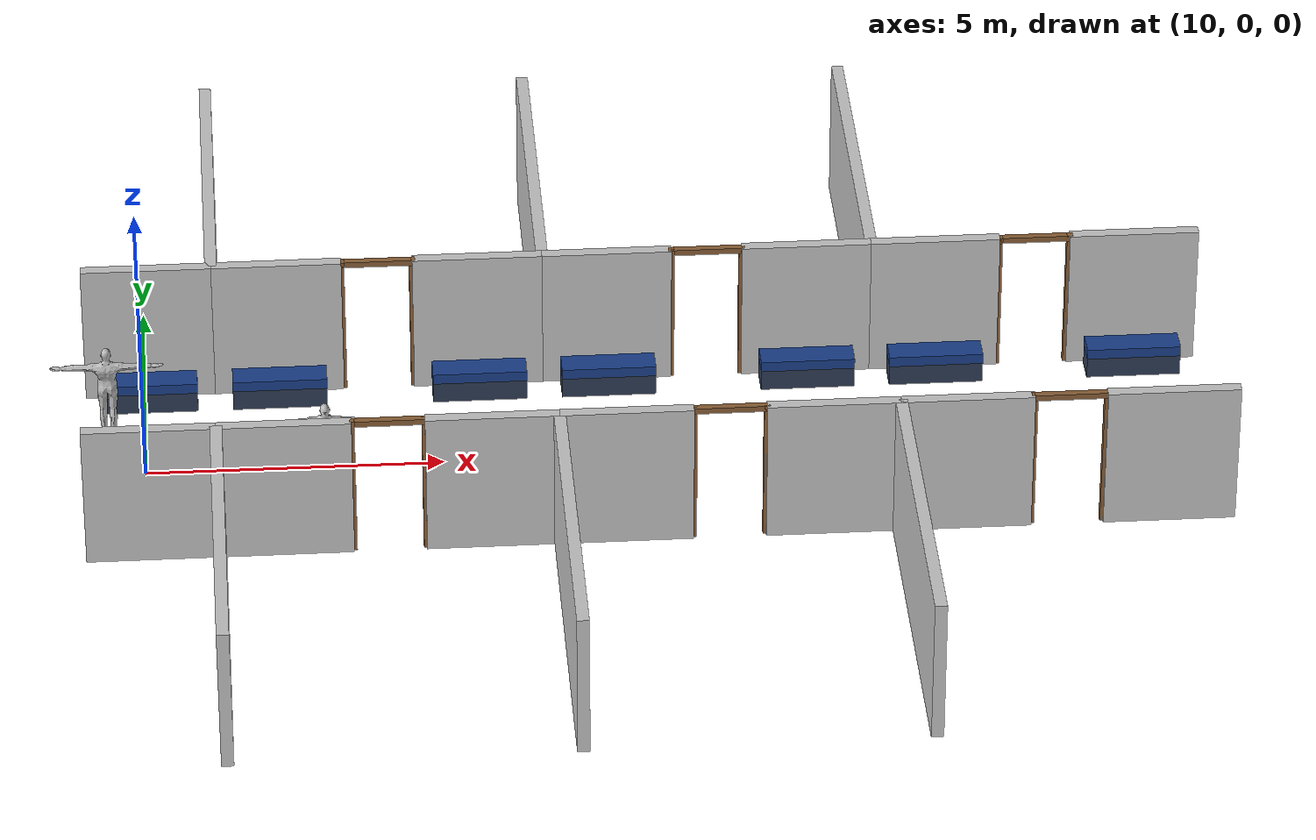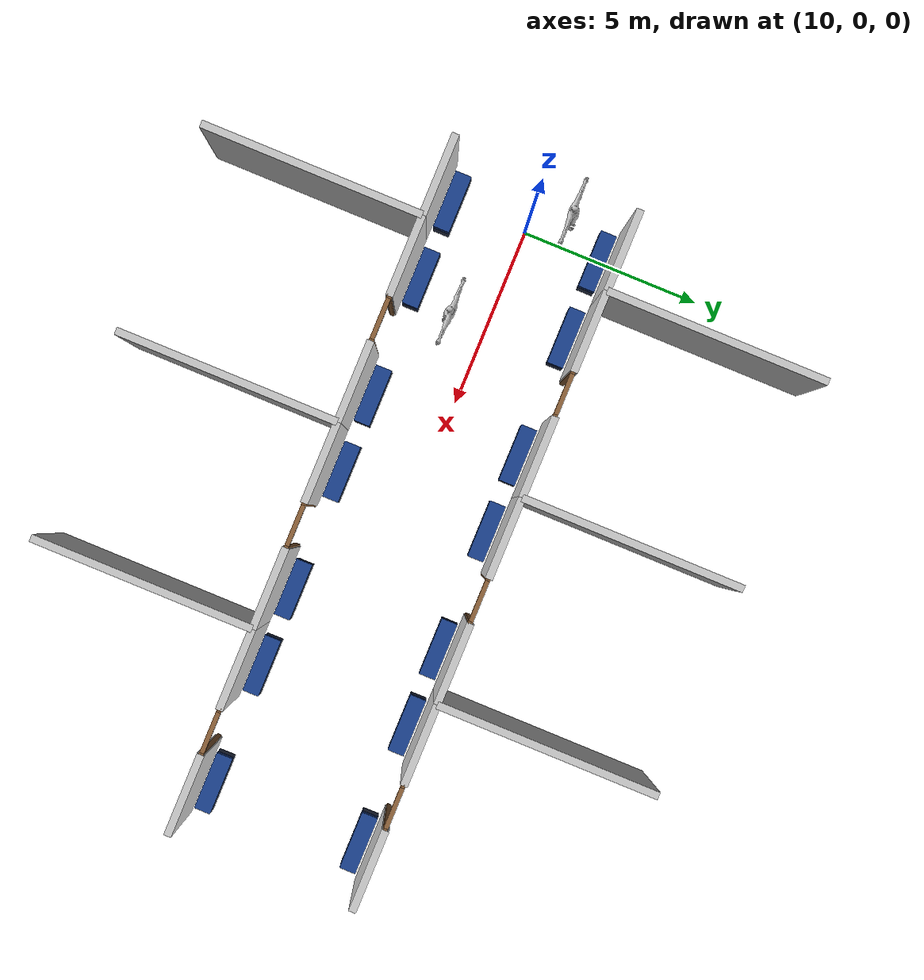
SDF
<sdf version="1.9">
 <world name="hospital_medium">
  <model name="north_partition_6">
   <static>true</static>
   <pose>11.200 5.500 1.250 0 0 0</pose>
   <link name="link">
    <collision name="collision"><geometry><box><size>0.200 6.000 2.500</size></box></geometry></collision>
    <visual name="visual">
     <geometry><box><size>0.200 6.000 2.500</size></box></geometry>
     <material><ambient>0.78 0.78 0.78 1.0</ambient><diffuse>0.78 0.78 0.78 1.0</diffuse></material>
    </visual>
   </link>
  </model>
  <model name="north_partition_7">
   <static>true</static>
   <pose>16.800 5.500 1.250 0 0 0</pose>
   <link name="link">
    <collision name="collision"><geometry><box><size>0.200 6.000 2.500</size></box></geometry></collision>
    <visual name="visual">
     <geometry><box><size>0.200 6.000 2.500</size></box></geometry>
     <material><ambient>0.78 0.78 0.78 1.0</ambient><diffuse>0.78 0.78 0.78 1.0</diffuse></material>
    </visual>
   </link>
  </model>
  <model name="north_partition_8">
   <static>true</static>
   <pose>22.400 5.500 1.250 0 0 0</pose>
   <link name="link">
    <collision name="collision"><geometry><box><size>0.200 6.000 2.500</size></box></geometry></collision>
    <visual name="visual">
     <geometry><box><size>0.200 6.000 2.500</size></box></geometry>
     <material><ambient>0.78 0.78 0.78 1.0</ambient><diffuse>0.78 0.78 0.78 1.0</diffuse></material>
    </visual>
   </link>
  </model>
  <model name="south_partition_6">
   <static>true</static>
   <pose>11.200 -5.500 1.250 0 0 0</pose>
   <link name="link">
    <collision name="collision"><geometry><box><size>0.200 6.000 2.500</size></box></geometry></collision>
    <visual name="visual">
     <geometry><box><size>0.200 6.000 2.500</size></box></geometry>
     <material><ambient>0.78 0.78 0.78 1.0</ambient><diffuse>0.78 0.78 0.78 1.0</diffuse></material>
    </visual>
   </link>
  </model>
  <model name="south_partition_7">
   <static>true</static>
   <pose>16.800 -5.500 1.250 0 0 0</pose>
   <link name="link">
    <collision name="collision"><geometry><box><size>0.200 6.000 2.500</size></box></geometry></collision>
    <visual name="visual">
     <geometry><box><size>0.200 6.000 2.500</size></box></geometry>
     <material><ambient>0.78 0.78 0.78 1.0</ambient><diffuse>0.78 0.78 0.78 1.0</diffuse></material>
    </visual>
   </link>
  </model>
  <model name="south_partition_8">
   <static>true</static>
   <pose>22.400 -5.500 1.250 0 0 0</pose>
   <link name="link">
    <collision name="collision"><geometry><box><size>0.200 6.000 2.500</size></box></geometry></collision>
    <visual name="visual">
     <geometry><box><size>0.200 6.000 2.500</size></box></geometry>
     <material><ambient>0.78 0.78 0.78 1.0</ambient><diffuse>0.78 0.78 0.78 1.0</diffuse></material>
    </visual>
   </link>
  </model>
  <model name="north_room_07_wall_right">
   <static>true</static>
   <pose>10.100 2.500 1.250 0 0 0</pose>
   <link name="link">
    <collision name="collision"><geometry><box><size>2.200 0.200 2.500</size></box></geometry></collision>
    <visual name="visual">
     <geometry><box><size>2.200 0.200 2.500</size></box></geometry>
     <material><ambient>0.78 0.78 0.78 1.0</ambient><diffuse>0.78 0.78 0.78 1.0</diffuse></material>
    </visual>
   </link>
  </model>
  <model name="north_room_08_wall_left">
   <static>true</static>
   <pose>12.300 2.500 1.250 0 0 0</pose>
   <link name="link">
    <collision name="collision"><geometry><box><size>2.200 0.200 2.500</size></box></geometry></collision>
    <visual name="visual">
     <geometry><box><size>2.200 0.200 2.500</size></box></geometry>
     <material><ambient>0.78 0.78 0.78 1.0</ambient><diffuse>0.78 0.78 0.78 1.0</diffuse></material>
    </visual>
   </link>
  </model>
  <model name="north_room_08_wall_right">
   <static>true</static>
   <pose>15.700 2.500 1.250 0 0 0</pose>
   <link name="link">
    <collision name="collision"><geometry><box><size>2.200 0.200 2.500</size></box></geometry></collision>
    <visual name="visual">
     <geometry><box><size>2.200 0.200 2.500</size></box></geometry>
     <material><ambient>0.78 0.78 0.78 1.0</ambient><diffuse>0.78 0.78 0.78 1.0</diffuse></material>
    </visual>
   </link>
  </model>
  <model name="north_room_09_wall_left">
   <static>true</static>
   <pose>17.900 2.500 1.250 0 0 0</pose>
   <link name="link">
    <collision name="collision"><geometry><box><size>2.200 0.200 2.500</size></box></geometry></collision>
    <visual name="visual">
     <geometry><box><size>2.200 0.200 2.500</size></box></geometry>
     <material><ambient>0.78 0.78 0.78 1.0</ambient><diffuse>0.78 0.78 0.78 1.0</diffuse></material>
    </visual>
   </link>
  </model>
  <model name="north_room_09_wall_right">
   <static>true</static>
   <pose>21.300 2.500 1.250 0 0 0</pose>
   <link name="link">
    <collision name="collision"><geometry><box><size>2.200 0.200 2.500</size></box></geometry></collision>
    <visual name="visual">
     <geometry><box><size>2.200 0.200 2.500</size></box></geometry>
     <material><ambient>0.78 0.78 0.78 1.0</ambient><diffuse>0.78 0.78 0.78 1.0</diffuse></material>
    </visual>
   </link>
  </model>
  <model name="north_room_10_wall_left">
   <static>true</static>
   <pose>23.500 2.500 1.250 0 0 0</pose>
   <link name="link">
    <collision name="collision"><geometry><box><size>2.200 0.200 2.500</size></box></geometry></collision>
    <visual name="visual">
     <geometry><box><size>2.200 0.200 2.500</size></box></geometry>
     <material><ambient>0.78 0.78 0.78 1.0</ambient><diffuse>0.78 0.78 0.78 1.0</diffuse></material>
    </visual>
   </link>
  </model>
  <model name="north_room_10_wall_right">
   <static>true</static>
   <pose>26.900 2.500 1.250 0 0 0</pose>
   <link name="link">
    <collision name="collision"><geometry><box><size>2.200 0.200 2.500</size></box></geometry></collision>
    <visual name="visual">
     <geometry><box><size>2.200 0.200 2.500</size></box></geometry>
     <material><ambient>0.78 0.78 0.78 1.0</ambient><diffuse>0.78 0.78 0.78 1.0</diffuse></material>
    </visual>
   </link>
  </model>
  <model name="south_room_07_wall_right">
   <static>true</static>
   <pose>10.100 -2.500 1.250 0 0 0</pose>
   <link name="link">
    <collision name="collision"><geometry><box><size>2.200 0.200 2.500</size></box></geometry></collision>
    <visual name="visual">
     <geometry><box><size>2.200 0.200 2.500</size></box></geometry>
     <material><ambient>0.78 0.78 0.78 1.0</ambient><diffuse>0.78 0.78 0.78 1.0</diffuse></material>
    </visual>
   </link>
  </model>
  <model name="south_room_08_wall_left">
   <static>true</static>
   <pose>12.300 -2.500 1.250 0 0 0</pose>
   <link name="link">
    <collision name="collision"><geometry><box><size>2.200 0.200 2.500</size></box></geometry></collision>
    <visual name="visual">
     <geometry><box><size>2.200 0.200 2.500</size></box></geometry>
     <material><ambient>0.78 0.78 0.78 1.0</ambient><diffuse>0.78 0.78 0.78 1.0</diffuse></material>
    </visual>
   </link>
  </model>
  <model name="south_room_08_wall_right">
   <static>true</static>
   <pose>15.700 -2.500 1.250 0 0 0</pose>
   <link name="link">
    <collision name="collision"><geometry><box><size>2.200 0.200 2.500</size></box></geometry></collision>
    <visual name="visual">
     <geometry><box><size>2.200 0.200 2.500</size></box></geometry>
     <material><ambient>0.78 0.78 0.78 1.0</ambient><diffuse>0.78 0.78 0.78 1.0</diffuse></material>
    </visual>
   </link>
  </model>
  <model name="south_room_09_wall_left">
   <static>true</static>
   <pose>17.900 -2.500 1.250 0 0 0</pose>
   <link name="link">
    <collision name="collision"><geometry><box><size>2.200 0.200 2.500</size></box></geometry></collision>
    <visual name="visual">
     <geometry><box><size>2.200 0.200 2.500</size></box></geometry>
     <material><ambient>0.78 0.78 0.78 1.0</ambient><diffuse>0.78 0.78 0.78 1.0</diffuse></material>
    </visual>
   </link>
  </model>
  <model name="south_room_09_wall_right">
   <static>true</static>
   <pose>21.300 -2.500 1.250 0 0 0</pose>
   <link name="link">
    <collision name="collision"><geometry><box><size>2.200 0.200 2.500</size></box></geometry></collision>
    <visual name="visual">
     <geometry><box><size>2.200 0.200 2.500</size></box></geometry>
     <material><ambient>0.78 0.78 0.78 1.0</ambient><diffuse>0.78 0.78 0.78 1.0</diffuse></material>
    </visual>
   </link>
  </model>
  <model name="south_room_10_wall_left">
   <static>true</static>
   <pose>23.500 -2.500 1.250 0 0 0</pose>
   <link name="link">
    <collision name="collision"><geometry><box><size>2.200 0.200 2.500</size></box></geometry></collision>
    <visual name="visual">
     <geometry><box><size>2.200 0.200 2.500</size></box></geometry>
     <material><ambient>0.78 0.78 0.78 1.0</ambient><diffuse>0.78 0.78 0.78 1.0</diffuse></material>
    </visual>
   </link>
  </model>
  <model name="south_room_10_wall_right">
   <static>true</static>
   <pose>26.900 -2.500 1.250 0 0 0</pose>
   <link name="link">
    <collision name="collision"><geometry><box><size>2.200 0.200 2.500</size></box></geometry></collision>
    <visual name="visual">
     <geometry><box><size>2.200 0.200 2.500</size></box></geometry>
     <material><ambient>0.78 0.78 0.78 1.0</ambient><diffuse>0.78 0.78 0.78 1.0</diffuse></material>
    </visual>
   </link>
  </model>
  <model name="north_door_08_left">
   <static>true</static>
   <pose>13.400 2.490 1.250 0 0 0</pose>
   <link name="link">
    <collision name="collision"><geometry><box><size>0.100 0.120 2.500</size></box></geometry></collision>
    <visual name="visual">
     <geometry><box><size>0.100 0.120 2.500</size></box></geometry>
     <material><ambient>0.55 0.38 0.22 1.0</ambient><diffuse>0.55 0.38 0.22 1.0</diffuse></material>
    </visual>
   </link>
  </model>
  <model name="north_door_08_right">
   <static>true</static>
   <pose>14.600 2.490 1.250 0 0 0</pose>
   <link name="link">
    <collision name="collision"><geometry><box><size>0.100 0.120 2.500</size></box></geometry></collision>
    <visual name="visual">
     <geometry><box><size>0.100 0.120 2.500</size></box></geometry>
     <material><ambient>0.55 0.38 0.22 1.0</ambient><diffuse>0.55 0.38 0.22 1.0</diffuse></material>
    </visual>
   </link>
  </model>
  <model name="north_door_08_top">
   <static>true</static>
   <pose>14.000 2.490 2.450 0 0 0</pose>
   <link name="link">
    <collision name="collision"><geometry><box><size>1.200 0.120 0.100</size></box></geometry></collision>
    <visual name="visual">
     <geometry><box><size>1.200 0.120 0.100</size></box></geometry>
     <material><ambient>0.55 0.38 0.22 1.0</ambient><diffuse>0.55 0.38 0.22 1.0</diffuse></material>
    </visual>
   </link>
  </model>
  <model name="north_door_09_left">
   <static>true</static>
   <pose>19.000 2.490 1.250 0 0 0</pose>
   <link name="link">
    <collision name="collision"><geometry><box><size>0.100 0.120 2.500</size></box></geometry></collision>
    <visual name="visual">
     <geometry><box><size>0.100 0.120 2.500</size></box></geometry>
     <material><ambient>0.55 0.38 0.22 1.0</ambient><diffuse>0.55 0.38 0.22 1.0</diffuse></material>
    </visual>
   </link>
  </model>
  <model name="north_door_09_right">
   <static>true</static>
   <pose>20.200 2.490 1.250 0 0 0</pose>
   <link name="link">
    <collision name="collision"><geometry><box><size>0.100 0.120 2.500</size></box></geometry></collision>
    <visual name="visual">
     <geometry><box><size>0.100 0.120 2.500</size></box></geometry>
     <material><ambient>0.55 0.38 0.22 1.0</ambient><diffuse>0.55 0.38 0.22 1.0</diffuse></material>
    </visual>
   </link>
  </model>
  <model name="north_door_09_top">
   <static>true</static>
   <pose>19.600 2.490 2.450 0 0 0</pose>
   <link name="link">
    <collision name="collision"><geometry><box><size>1.200 0.120 0.100</size></box></geometry></collision>
    <visual name="visual">
     <geometry><box><size>1.200 0.120 0.100</size></box></geometry>
     <material><ambient>0.55 0.38 0.22 1.0</ambient><diffuse>0.55 0.38 0.22 1.0</diffuse></material>
    </visual>
   </link>
  </model>
  <model name="north_door_10_left">
   <static>true</static>
   <pose>24.600 2.490 1.250 0 0 0</pose>
   <link name="link">
    <collision name="collision"><geometry><box><size>0.100 0.120 2.500</size></box></geometry></collision>
    <visual name="visual">
     <geometry><box><size>0.100 0.120 2.500</size></box></geometry>
     <material><ambient>0.55 0.38 0.22 1.0</ambient><diffuse>0.55 0.38 0.22 1.0</diffuse></material>
    </visual>
   </link>
  </model>
  <model name="north_door_10_right">
   <static>true</static>
   <pose>25.800 2.490 1.250 0 0 0</pose>
   <link name="link">
    <collision name="collision"><geometry><box><size>0.100 0.120 2.500</size></box></geometry></collision>
    <visual name="visual">
     <geometry><box><size>0.100 0.120 2.500</size></box></geometry>
     <material><ambient>0.55 0.38 0.22 1.0</ambient><diffuse>0.55 0.38 0.22 1.0</diffuse></material>
    </visual>
   </link>
  </model>
  <model name="north_door_10_top">
   <static>true</static>
   <pose>25.200 2.490 2.450 0 0 0</pose>
   <link name="link">
    <collision name="collision"><geometry><box><size>1.200 0.120 0.100</size></box></geometry></collision>
    <visual name="visual">
     <geometry><box><size>1.200 0.120 0.100</size></box></geometry>
     <material><ambient>0.55 0.38 0.22 1.0</ambient><diffuse>0.55 0.38 0.22 1.0</diffuse></material>
    </visual>
   </link>
  </model>
  <model name="south_door_08_left">
   <static>true</static>
   <pose>13.400 -2.490 1.250 0 0 0</pose>
   <link name="link">
    <collision name="collision"><geometry><box><size>0.100 0.120 2.500</size></box></geometry></collision>
    <visual name="visual">
     <geometry><box><size>0.100 0.120 2.500</size></box></geometry>
     <material><ambient>0.55 0.38 0.22 1.0</ambient><diffuse>0.55 0.38 0.22 1.0</diffuse></material>
    </visual>
   </link>
  </model>
  <model name="south_door_08_right">
   <static>true</static>
   <pose>14.600 -2.490 1.250 0 0 0</pose>
   <link name="link">
    <collision name="collision"><geometry><box><size>0.100 0.120 2.500</size></box></geometry></collision>
    <visual name="visual">
     <geometry><box><size>0.100 0.120 2.500</size></box></geometry>
     <material><ambient>0.55 0.38 0.22 1.0</ambient><diffuse>0.55 0.38 0.22 1.0</diffuse></material>
    </visual>
   </link>
  </model>
  <model name="south_door_08_top">
   <static>true</static>
   <pose>14.000 -2.490 2.450 0 0 0</pose>
   <link name="link">
    <collision name="collision"><geometry><box><size>1.200 0.120 0.100</size></box></geometry></collision>
    <visual name="visual">
     <geometry><box><size>1.200 0.120 0.100</size></box></geometry>
     <material><ambient>0.55 0.38 0.22 1.0</ambient><diffuse>0.55 0.38 0.22 1.0</diffuse></material>
    </visual>
   </link>
  </model>
  <model name="south_door_09_left">
   <static>true</static>
   <pose>19.000 -2.490 1.250 0 0 0</pose>
   <link name="link">
    <collision name="collision"><geometry><box><size>0.100 0.120 2.500</size></box></geometry></collision>
    <visual name="visual">
     <geometry><box><size>0.100 0.120 2.500</size></box></geometry>
     <material><ambient>0.55 0.38 0.22 1.0</ambient><diffuse>0.55 0.38 0.22 1.0</diffuse></material>
    </visual>
   </link>
  </model>
  <model name="south_door_09_right">
   <static>true</static>
   <pose>20.200 -2.490 1.250 0 0 0</pose>
   <link name="link">
    <collision name="collision"><geometry><box><size>0.100 0.120 2.500</size></box></geometry></collision>
    <visual name="visual">
     <geometry><box><size>0.100 0.120 2.500</size></box></geometry>
     <material><ambient>0.55 0.38 0.22 1.0</ambient><diffuse>0.55 0.38 0.22 1.0</diffuse></material>
    </visual>
   </link>
  </model>
  <model name="south_door_09_top">
   <static>true</static>
   <pose>19.600 -2.490 2.450 0 0 0</pose>
   <link name="link">
    <collision name="collision"><geometry><box><size>1.200 0.120 0.100</size></box></geometry></collision>
    <visual name="visual">
     <geometry><box><size>1.200 0.120 0.100</size></box></geometry>
     <material><ambient>0.55 0.38 0.22 1.0</ambient><diffuse>0.55 0.38 0.22 1.0</diffuse></material>
    </visual>
   </link>
  </model>
  <model name="south_door_10_left">
   <static>true</static>
   <pose>24.600 -2.490 1.250 0 0 0</pose>
   <link name="link">
    <collision name="collision"><geometry><box><size>0.100 0.120 2.500</size></box></geometry></collision>
    <visual name="visual">
     <geometry><box><size>0.100 0.120 2.500</size></box></geometry>
     <material><ambient>0.55 0.38 0.22 1.0</ambient><diffuse>0.55 0.38 0.22 1.0</diffuse></material>
    </visual>
   </link>
  </model>
  <model name="south_door_10_right">
   <static>true</static>
   <pose>25.800 -2.490 1.250 0 0 0</pose>
   <link name="link">
    <collision name="collision"><geometry><box><size>0.100 0.120 2.500</size></box></geometry></collision>
    <visual name="visual">
     <geometry><box><size>0.100 0.120 2.500</size></box></geometry>
     <material><ambient>0.55 0.38 0.22 1.0</ambient><diffuse>0.55 0.38 0.22 1.0</diffuse></material>
    </visual>
   </link>
  </model>
  <model name="south_door_10_top">
   <static>true</static>
   <pose>25.200 -2.490 2.450 0 0 0</pose>
   <link name="link">
    <collision name="collision"><geometry><box><size>1.200 0.120 0.100</size></box></geometry></collision>
    <visual name="visual">
     <geometry><box><size>1.200 0.120 0.100</size></box></geometry>
     <material><ambient>0.55 0.38 0.22 1.0</ambient><diffuse>0.55 0.38 0.22 1.0</diffuse></material>
    </visual>
   </link>
  </model>
  <model name="north_room_07_bench_right_seat">
   <static>true</static>
   <pose>10.100 2.100 0.450 0 0 0</pose>
   <link name="link">
    <collision name="collision"><geometry><box><size>1.600 0.450 0.180</size></box></geometry></collision>
    <visual name="visual">
     <geometry><box><size>1.600 0.450 0.180</size></box></geometry>
     <material><ambient>0.10 0.25 0.55 1.0</ambient><diffuse>0.10 0.25 0.55 1.0</diffuse></material>
    </visual>
   </link>
  </model>
  <model name="north_room_07_bench_right_base">
   <static>true</static>
   <pose>10.100 2.100 0.180 0 0 0</pose>
   <link name="link">
    <collision name="collision"><geometry><box><size>1.600 0.450 0.360</size></box></geometry></collision>
    <visual name="visual">
     <geometry><box><size>1.600 0.450 0.360</size></box></geometry>
     <material><ambient>0.18 0.23 0.33 1.0</ambient><diffuse>0.18 0.23 0.33 1.0</diffuse></material>
    </visual>
   </link>
  </model>
  <model name="north_room_08_bench_left_seat">
   <static>true</static>
   <pose>12.300 2.100 0.450 0 0 0</pose>
   <link name="link">
    <collision name="collision"><geometry><box><size>1.600 0.450 0.180</size></box></geometry></collision>
    <visual name="visual">
     <geometry><box><size>1.600 0.450 0.180</size></box></geometry>
     <material><ambient>0.10 0.25 0.55 1.0</ambient><diffuse>0.10 0.25 0.55 1.0</diffuse></material>
    </visual>
   </link>
  </model>
  <model name="north_room_08_bench_left_base">
   <static>true</static>
   <pose>12.300 2.100 0.180 0 0 0</pose>
   <link name="link">
    <collision name="collision"><geometry><box><size>1.600 0.450 0.360</size></box></geometry></collision>
    <visual name="visual">
     <geometry><box><size>1.600 0.450 0.360</size></box></geometry>
     <material><ambient>0.18 0.23 0.33 1.0</ambient><diffuse>0.18 0.23 0.33 1.0</diffuse></material>
    </visual>
   </link>
  </model>
  <model name="north_room_08_bench_right_seat">
   <static>true</static>
   <pose>15.700 2.100 0.450 0 0 0</pose>
   <link name="link">
    <collision name="collision"><geometry><box><size>1.600 0.450 0.180</size></box></geometry></collision>
    <visual name="visual">
     <geometry><box><size>1.600 0.450 0.180</size></box></geometry>
     <material><ambient>0.10 0.25 0.55 1.0</ambient><diffuse>0.10 0.25 0.55 1.0</diffuse></material>
    </visual>
   </link>
  </model>
  <model name="north_room_08_bench_right_base">
   <static>true</static>
   <pose>15.700 2.100 0.180 0 0 0</pose>
   <link name="link">
    <collision name="collision"><geometry><box><size>1.600 0.450 0.360</size></box></geometry></collision>
    <visual name="visual">
     <geometry><box><size>1.600 0.450 0.360</size></box></geometry>
     <material><ambient>0.18 0.23 0.33 1.0</ambient><diffuse>0.18 0.23 0.33 1.0</diffuse></material>
    </visual>
   </link>
  </model>
  <model name="north_room_09_bench_left_seat">
   <static>true</static>
   <pose>17.900 2.100 0.450 0 0 0</pose>
   <link name="link">
    <collision name="collision"><geometry><box><size>1.600 0.450 0.180</size></box></geometry></collision>
    <visual name="visual">
     <geometry><box><size>1.600 0.450 0.180</size></box></geometry>
     <material><ambient>0.10 0.25 0.55 1.0</ambient><diffuse>0.10 0.25 0.55 1.0</diffuse></material>
    </visual>
   </link>
  </model>
  <model name="north_room_09_bench_left_base">
   <static>true</static>
   <pose>17.900 2.100 0.180 0 0 0</pose>
   <link name="link">
    <collision name="collision"><geometry><box><size>1.600 0.450 0.360</size></box></geometry></collision>
    <visual name="visual">
     <geometry><box><size>1.600 0.450 0.360</size></box></geometry>
     <material><ambient>0.18 0.23 0.33 1.0</ambient><diffuse>0.18 0.23 0.33 1.0</diffuse></material>
    </visual>
   </link>
  </model>
  <model name="north_room_09_bench_right_seat">
   <static>true</static>
   <pose>21.300 2.100 0.450 0 0 0</pose>
   <link name="link">
    <collision name="collision"><geometry><box><size>1.600 0.450 0.180</size></box></geometry></collision>
    <visual name="visual">
     <geometry><box><size>1.600 0.450 0.180</size></box></geometry>
     <material><ambient>0.10 0.25 0.55 1.0</ambient><diffuse>0.10 0.25 0.55 1.0</diffuse></material>
    </visual>
   </link>
  </model>
  <model name="north_room_09_bench_right_base">
   <static>true</static>
   <pose>21.300 2.100 0.180 0 0 0</pose>
   <link name="link">
    <collision name="collision"><geometry><box><size>1.600 0.450 0.360</size></box></geometry></collision>
    <visual name="visual">
     <geometry><box><size>1.600 0.450 0.360</size></box></geometry>
     <material><ambient>0.18 0.23 0.33 1.0</ambient><diffuse>0.18 0.23 0.33 1.0</diffuse></material>
    </visual>
   </link>
  </model>
  <model name="north_room_10_bench_left_seat">
   <static>true</static>
   <pose>23.500 2.100 0.450 0 0 0</pose>
   <link name="link">
    <collision name="collision"><geometry><box><size>1.600 0.450 0.180</size></box></geometry></collision>
    <visual name="visual">
     <geometry><box><size>1.600 0.450 0.180</size></box></geometry>
     <material><ambient>0.10 0.25 0.55 1.0</ambient><diffuse>0.10 0.25 0.55 1.0</diffuse></material>
    </visual>
   </link>
  </model>
  <model name="north_room_10_bench_left_base">
   <static>true</static>
   <pose>23.500 2.100 0.180 0 0 0</pose>
   <link name="link">
    <collision name="collision"><geometry><box><size>1.600 0.450 0.360</size></box></geometry></collision>
    <visual name="visual">
     <geometry><box><size>1.600 0.450 0.360</size></box></geometry>
     <material><ambient>0.18 0.23 0.33 1.0</ambient><diffuse>0.18 0.23 0.33 1.0</diffuse></material>
    </visual>
   </link>
  </model>
  <model name="north_room_10_bench_right_seat">
   <static>true</static>
   <pose>26.900 2.100 0.450 0 0 0</pose>
   <link name="link">
    <collision name="collision"><geometry><box><size>1.600 0.450 0.180</size></box></geometry></collision>
    <visual name="visual">
     <geometry><box><size>1.600 0.450 0.180</size></box></geometry>
     <material><ambient>0.10 0.25 0.55 1.0</ambient><diffuse>0.10 0.25 0.55 1.0</diffuse></material>
    </visual>
   </link>
  </model>
  <model name="north_room_10_bench_right_base">
   <static>true</static>
   <pose>26.900 2.100 0.180 0 0 0</pose>
   <link name="link">
    <collision name="collision"><geometry><box><size>1.600 0.450 0.360</size></box></geometry></collision>
    <visual name="visual">
     <geometry><box><size>1.600 0.450 0.360</size></box></geometry>
     <material><ambient>0.18 0.23 0.33 1.0</ambient><diffuse>0.18 0.23 0.33 1.0</diffuse></material>
    </visual>
   </link>
  </model>
  <model name="south_room_07_bench_right_seat">
   <static>true</static>
   <pose>10.100 -2.100 0.450 0 0 0</pose>
   <link name="link">
    <collision name="collision"><geometry><box><size>1.600 0.450 0.180</size></box></geometry></collision>
    <visual name="visual">
     <geometry><box><size>1.600 0.450 0.180</size></box></geometry>
     <material><ambient>0.10 0.25 0.55 1.0</ambient><diffuse>0.10 0.25 0.55 1.0</diffuse></material>
    </visual>
   </link>
  </model>
  <model name="south_room_07_bench_right_base">
   <static>true</static>
   <pose>10.100 -2.100 0.180 0 0 0</pose>
   <link name="link">
    <collision name="collision"><geometry><box><size>1.600 0.450 0.360</size></box></geometry></collision>
    <visual name="visual">
     <geometry><box><size>1.600 0.450 0.360</size></box></geometry>
     <material><ambient>0.18 0.23 0.33 1.0</ambient><diffuse>0.18 0.23 0.33 1.0</diffuse></material>
    </visual>
   </link>
  </model>
  <model name="south_room_08_bench_left_seat">
   <static>true</static>
   <pose>12.300 -2.100 0.450 0 0 0</pose>
   <link name="link">
    <collision name="collision"><geometry><box><size>1.600 0.450 0.180</size></box></geometry></collision>
    <visual name="visual">
     <geometry><box><size>1.600 0.450 0.180</size></box></geometry>
     <material><ambient>0.10 0.25 0.55 1.0</ambient><diffuse>0.10 0.25 0.55 1.0</diffuse></material>
    </visual>
   </link>
  </model>
  <model name="south_room_08_bench_left_base">
   <static>true</static>
   <pose>12.300 -2.100 0.180 0 0 0</pose>
   <link name="link">
    <collision name="collision"><geometry><box><size>1.600 0.450 0.360</size></box></geometry></collision>
    <visual name="visual">
     <geometry><box><size>1.600 0.450 0.360</size></box></geometry>
     <material><ambient>0.18 0.23 0.33 1.0</ambient><diffuse>0.18 0.23 0.33 1.0</diffuse></material>
    </visual>
   </link>
  </model>
  <model name="south_room_08_bench_right_seat">
   <static>true</static>
   <pose>15.700 -2.100 0.450 0 0 0</pose>
   <link name="link">
    <collision name="collision"><geometry><box><size>1.600 0.450 0.180</size></box></geometry></collision>
    <visual name="visual">
     <geometry><box><size>1.600 0.450 0.180</size></box></geometry>
     <material><ambient>0.10 0.25 0.55 1.0</ambient><diffuse>0.10 0.25 0.55 1.0</diffuse></material>
    </visual>
   </link>
  </model>
  <model name="south_room_08_bench_right_base">
   <static>true</static>
   <pose>15.700 -2.100 0.180 0 0 0</pose>
   <link name="link">
    <collision name="collision"><geometry><box><size>1.600 0.450 0.360</size></box></geometry></collision>
    <visual name="visual">
     <geometry><box><size>1.600 0.450 0.360</size></box></geometry>
     <material><ambient>0.18 0.23 0.33 1.0</ambient><diffuse>0.18 0.23 0.33 1.0</diffuse></material>
    </visual>
   </link>
  </model>
  <model name="south_room_09_bench_left_seat">
   <static>true</static>
   <pose>17.900 -2.100 0.450 0 0 0</pose>
   <link name="link">
    <collision name="collision"><geometry><box><size>1.600 0.450 0.180</size></box></geometry></collision>
    <visual name="visual">
     <geometry><box><size>1.600 0.450 0.180</size></box></geometry>
     <material><ambient>0.10 0.25 0.55 1.0</ambient><diffuse>0.10 0.25 0.55 1.0</diffuse></material>
    </visual>
   </link>
  </model>
  <model name="south_room_09_bench_left_base">
   <static>true</static>
   <pose>17.900 -2.100 0.180 0 0 0</pose>
   <link name="link">
    <collision name="collision"><geometry><box><size>1.600 0.450 0.360</size></box></geometry></collision>
    <visual name="visual">
     <geometry><box><size>1.600 0.450 0.360</size></box></geometry>
     <material><ambient>0.18 0.23 0.33 1.0</ambient><diffuse>0.18 0.23 0.33 1.0</diffuse></material>
    </visual>
   </link>
  </model>
  <model name="south_room_09_bench_right_seat">
   <static>true</static>
   <pose>21.300 -2.100 0.450 0 0 0</pose>
   <link name="link">
    <collision name="collision"><geometry><box><size>1.600 0.450 0.180</size></box></geometry></collision>
    <visual name="visual">
     <geometry><box><size>1.600 0.450 0.180</size></box></geometry>
     <material><ambient>0.10 0.25 0.55 1.0</ambient><diffuse>0.10 0.25 0.55 1.0</diffuse></material>
    </visual>
   </link>
  </model>
  <model name="south_room_09_bench_right_base">
   <static>true</static>
   <pose>21.300 -2.100 0.180 0 0 0</pose>
   <link name="link">
    <collision name="collision"><geometry><box><size>1.600 0.450 0.360</size></box></geometry></collision>
    <visual name="visual">
     <geometry><box><size>1.600 0.450 0.360</size></box></geometry>
     <material><ambient>0.18 0.23 0.33 1.0</ambient><diffuse>0.18 0.23 0.33 1.0</diffuse></material>
    </visual>
   </link>
  </model>
  <model name="south_room_10_bench_left_seat">
   <static>true</static>
   <pose>23.500 -2.100 0.450 0 0 0</pose>
   <link name="link">
    <collision name="collision"><geometry><box><size>1.600 0.450 0.180</size></box></geometry></collision>
    <visual name="visual">
     <geometry><box><size>1.600 0.450 0.180</size></box></geometry>
     <material><ambient>0.10 0.25 0.55 1.0</ambient><diffuse>0.10 0.25 0.55 1.0</diffuse></material>
    </visual>
   </link>
  </model>
  <model name="south_room_10_bench_left_base">
   <static>true</static>
   <pose>23.500 -2.100 0.180 0 0 0</pose>
   <link name="link">
    <collision name="collision"><geometry><box><size>1.600 0.450 0.360</size></box></geometry></collision>
    <visual name="visual">
     <geometry><box><size>1.600 0.450 0.360</size></box></geometry>
     <material><ambient>0.18 0.23 0.33 1.0</ambient><diffuse>0.18 0.23 0.33 1.0</diffuse></material>
    </visual>
   </link>
  </model>
  <model name="south_room_10_bench_right_seat">
   <static>true</static>
   <pose>26.900 -2.100 0.450 0 0 0</pose>
   <link name="link">
    <collision name="collision"><geometry><box><size>1.600 0.450 0.180</size></box></geometry></collision>
    <visual name="visual">
     <geometry><box><size>1.600 0.450 0.180</size></box></geometry>
     <material><ambient>0.10 0.25 0.55 1.0</ambient><diffuse>0.10 0.25 0.55 1.0</diffuse></material>
    </visual>
   </link>
  </model>
  <model name="south_room_10_bench_right_base">
   <static>true</static>
   <pose>26.900 -2.100 0.180 0 0 0</pose>
   <link name="link">
    <collision name="collision"><geometry><box><size>1.600 0.450 0.360</size></box></geometry></collision>
    <visual name="visual">
     <geometry><box><size>1.600 0.450 0.360</size></box></geometry>
     <material><ambient>0.18 0.23 0.33 1.0</ambient><diffuse>0.18 0.23 0.33 1.0</diffuse></material>
    </visual>
   </link>
  </model>
  <model name="medium_walker_04_same_direction_proxy">
   <pose>11.000 0.000 0.850 0 0 0.00000</pose>
   <link name="link">
    <gravity>false</gravity>
    <kinematic>true</kinematic>
    <collision name="collision">
     <geometry><cylinder><radius>0.28</radius><length>1.70</length></cylinder></geometry>
    </collision>
    <visual name="proxy_visual">
     <geometry><cylinder><radius>0.28</radius><length>1.70</length></cylinder></geometry>
     <transparency>1.0</transparency>
    </visual>
   </link>
  </model>
  <model name="medium_walker_05_wait_then_cross_proxy">
   <pose>19.600 -4.000 0.850 0 0 1.57080</pose>
   <link name="link">
    <gravity>false</gravity>
    <kinematic>true</kinematic>
    <collision name="collision">
     <geometry><cylinder><radius>0.28</radius><length>1.70</length></cylinder></geometry>
    </collision>
    <visual name="proxy_visual">
     <geometry><cylinder><radius>0.28</radius><length>1.70</length></cylinder></geometry>
     <transparency>1.0</transparency>
    </visual>
   </link>
  </model>
  <model name="medium_standing_room_07_north">
   <static>true</static>
   <pose>9.400 1.000 1.0 0 0 3.14159</pose>
   <link name="body">
    <visual name="standing_person">
     <geometry><mesh><uri>model://human/meshes/stand.dae</uri></mesh></geometry>
    </visual>
    <collision name="body_collision">
     <pose>0 0 -0.15 0 0 0</pose>
     <geometry><cylinder><radius>0.28</radius><length>1.70</length></cylinder></geometry>
    </collision>
   </link>
  </model>
  <model name="medium_standing_room_08_south">
   <static>true</static>
   <pose>13.000 -1.000 1.0 0 0 0.00000</pose>
   <link name="body">
    <visual name="standing_person">
     <geometry><mesh><uri>model://human/meshes/stand.dae</uri></mesh></geometry>
    </visual>
    <collision name="body_collision">
     <pose>0 0 -0.15 0 0 0</pose>
     <geometry><cylinder><radius>0.28</radius><length>1.70</length></cylinder></geometry>
    </collision>
   </link>
  </model>
 </world>
</sdf>
